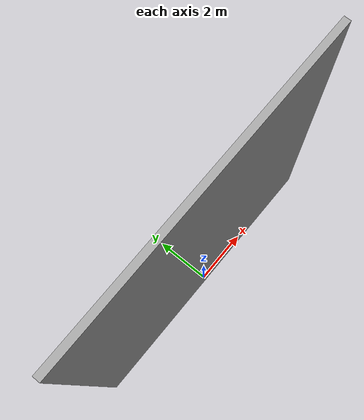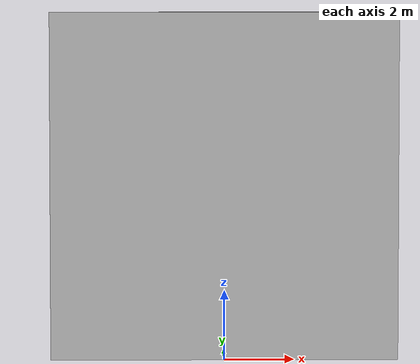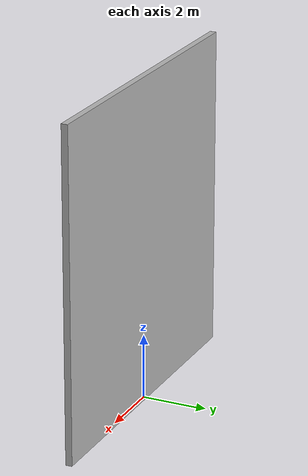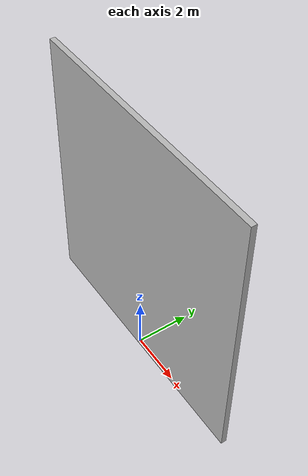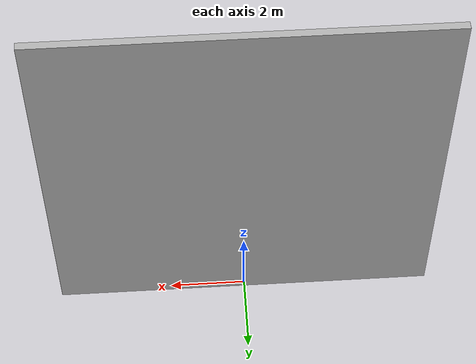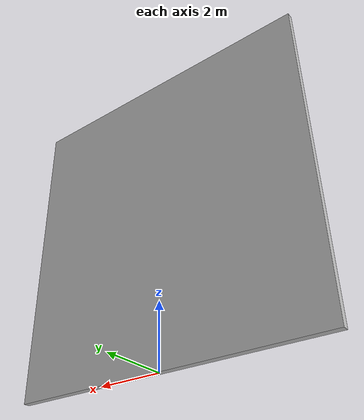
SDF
<?xml version="1.0" ?>
<sdf version="1.5">
  <model name="dataset_studio_wall">
    <static>true</static>
    <link name="link">
      <pose>0 0 5.0 0 0 0</pose>
      <collision name="collision">
        <geometry>
          <box>
            <size>10.0 0.2 10.0</size>
          </box>
        </geometry>
      </collision>
      <visual name="visual">
        <cast_shadows>false</cast_shadows>
        <geometry>
          <box>
            <size>10.0 0.2 10.0</size>
          </box>
        </geometry>
        <material>
          <script>
            <uri>model://dataset_studio_wall/materials/scripts</uri>
            <uri>model://dataset_studio_wall/materials/textures</uri>
            <name>vrc/random_noise_wall</name>
          </script>
        </material>
      </visual>
    </link>
  </model>
</sdf>
